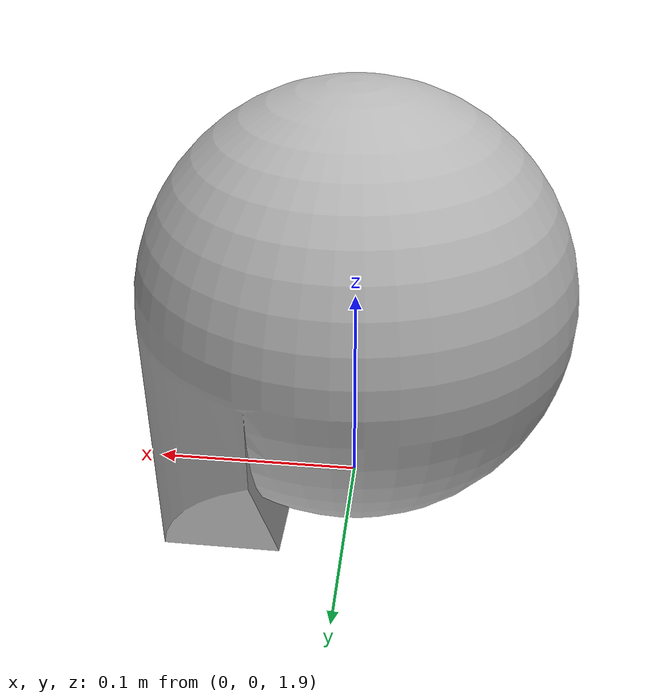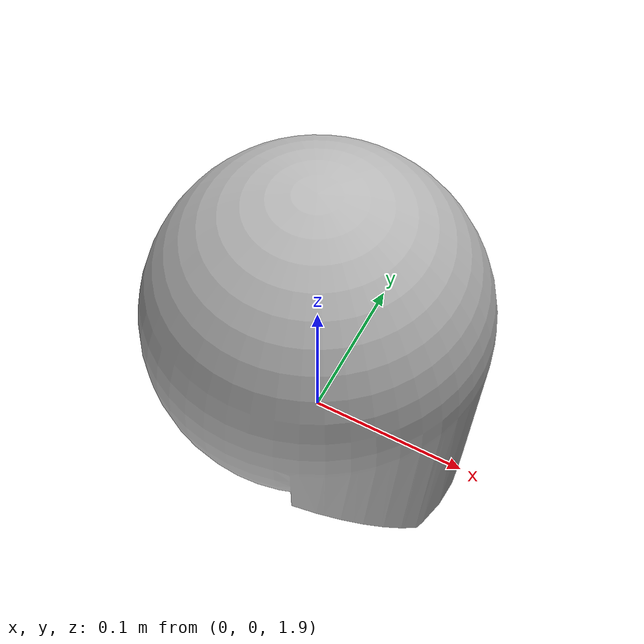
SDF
<sdf version='1.4'>
  <model name='human'>
    <link name='head_link'>
      <pose>0.000000 0.000000 0.000000 0.000000 0.000000 0.000000</pose>
      <inertial>
        <pose>0.009317 -0.000000 2.010570 0.000000 0.000000 0.000000</pose>
        <mass>3.932850</mass>
        <inertia>
          <ixx>0.016568</ixx>
          <ixy>0.000000</ixy>
          <ixz>-0.002768</ixz>
          <iyy>0.017702</iyy>
          <iyz>-0.000000</iyz>
          <izz>0.016605</izz>
        </inertia>
      </inertial>
      <collision name='head_link_collision'>
        <pose>0.000000 0.000000 2.000000 0.000000 0.000000 0.000000</pose>
        <geometry>
          <mesh>
            <scale>1.000000 1.000000 1.000000</scale>
            <uri>model://human/meshes/head_link.STL</uri>
          </mesh>
        </geometry>
      </collision>
      <visual name='head_link_vis'>
        <pose>0.000000 0.000000 2.000000 0.000000 0.000000 0.000000</pose>
        <geometry>
          <mesh>
            <scale>1.000000 1.000000 1.000000</scale>
            <uri>model://human/meshes/head_link.STL</uri>
          </mesh>
        </geometry>
      </visual>
      <velocity_decay>
        <linear>0.000000</linear>
        <angular>0.000000</angular>
      </velocity_decay>
    </link>
  </model>
</sdf>
